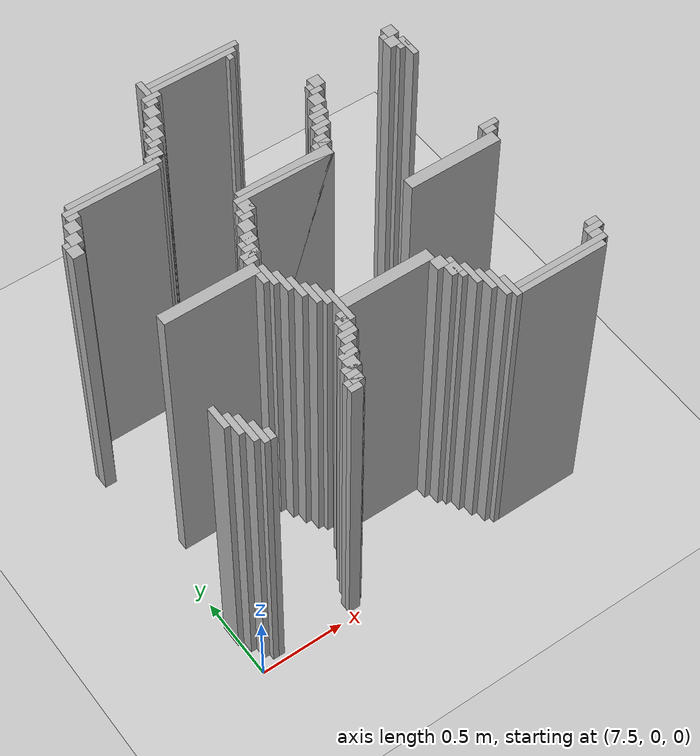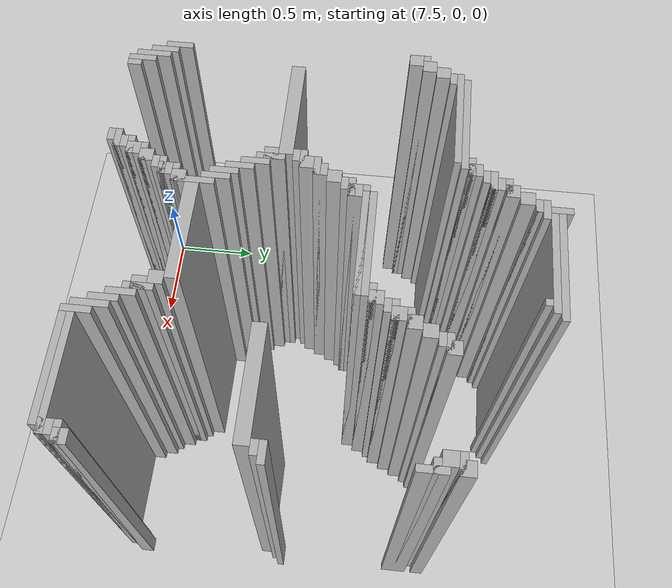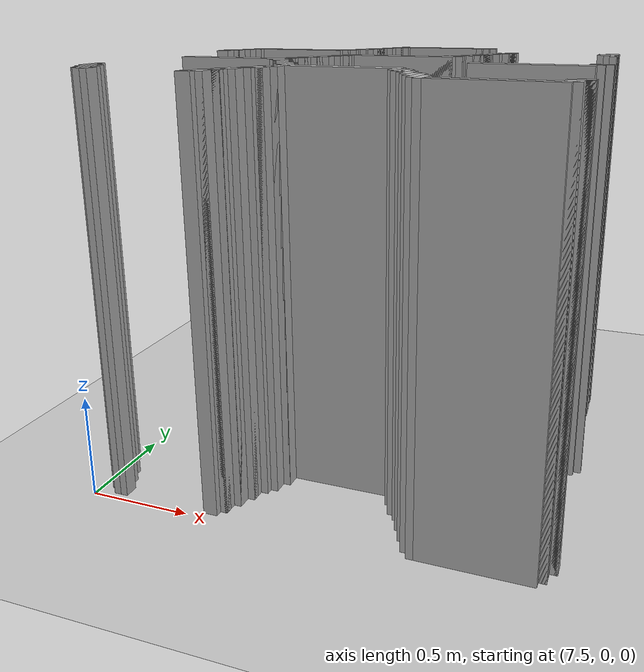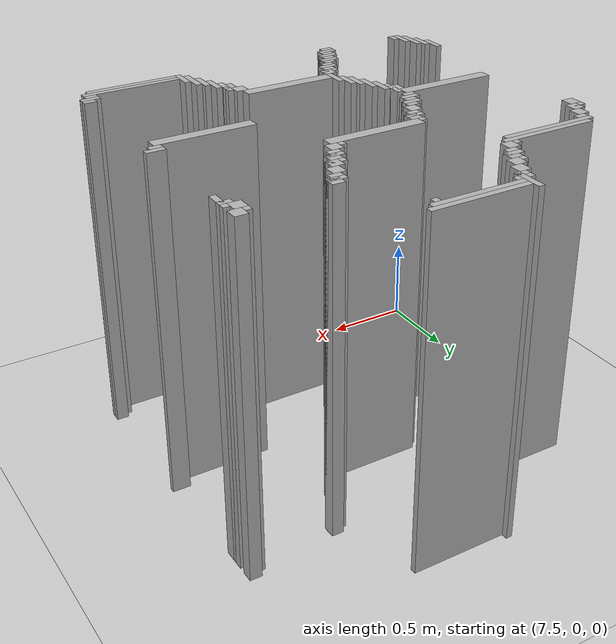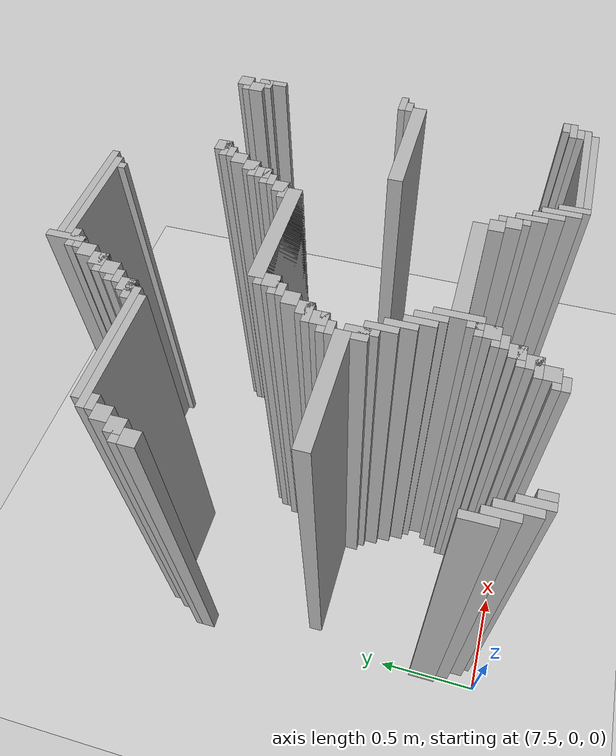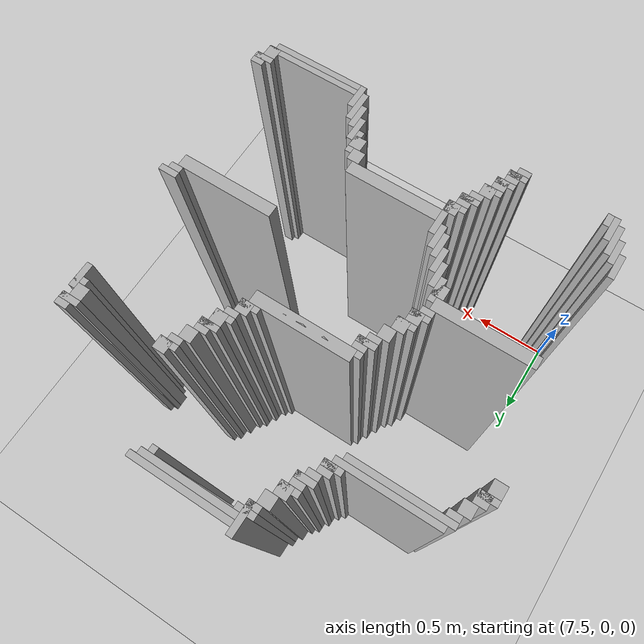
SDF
<sdf version="1.6">
 <world name="slam_world">
  <model name="ground_plane">
   <static>true</static>
   <link name="link">
    <collision name="collision">
     <geometry><plane><normal>0 0 1</normal><size>100 100</size></plane></geometry>
    </collision>
    <visual name="visual">
     <geometry><plane><normal>0 0 1</normal><size>100 100</size></plane></geometry>
     <material>
      <ambient>0.8 0.8 0.8 1</ambient>
      <diffuse>0.8 0.8 0.8 1</diffuse>
      <specular>0.8 0.8 0.8 1</specular>
     </material>
    </visual>
   </link>
  </model>
  <model name="wall_5125">
   <static>true</static>
   <pose>8.335266821345707 2.1751740139211138 1.0 0 0 0</pose>
   <link name="link">
    <collision name="collision">
     <geometry><box><size>0.03480278422273782 0.17401392111368907 2.0</size></box></geometry>
    </collision>
    <visual name="visual">
     <geometry><box><size>0.03480278422273782 0.17401392111368907 2.0</size></box></geometry>
     <material><ambient>0.5 0.5 0.5 1</ambient><diffuse>0.7 0.7 0.7 1</diffuse></material>
    </visual>
   </link>
  </model>
  <model name="wall_5140">
   <static>true</static>
   <pose>8.631090487238978 2.2099767981438516 1.0 0 0 0</pose>
   <link name="link">
    <collision name="collision">
     <geometry><box><size>0.5568445475638051 0.03480278422273782 2.0</size></box></geometry>
    </collision>
    <visual name="visual">
     <geometry><box><size>0.5568445475638051 0.03480278422273782 2.0</size></box></geometry>
     <material><ambient>0.5 0.5 0.5 1</ambient><diffuse>0.7 0.7 0.7 1</diffuse></material>
    </visual>
   </link>
  </model>
  <model name="wall_5154">
   <static>true</static>
   <pose>8.61368909512761 2.1751740139211138 1.0 0 0 0</pose>
   <link name="link">
    <collision name="collision">
     <geometry><box><size>0.5220417633410672 0.03480278422273782 2.0</size></box></geometry>
    </collision>
    <visual name="visual">
     <geometry><box><size>0.5220417633410672 0.03480278422273782 2.0</size></box></geometry>
     <material><ambient>0.5 0.5 0.5 1</ambient><diffuse>0.7 0.7 0.7 1</diffuse></material>
    </visual>
   </link>
  </model>
  <model name="wall_5169">
   <static>true</static>
   <pose>8.335266821345707 2.140371229698376 1.0 0 0 0</pose>
   <link name="link">
    <collision name="collision">
     <geometry><box><size>0.10440835266821345 0.03480278422273782 2.0</size></box></geometry>
    </collision>
    <visual name="visual">
     <geometry><box><size>0.10440835266821345 0.03480278422273782 2.0</size></box></geometry>
     <material><ambient>0.5 0.5 0.5 1</ambient><diffuse>0.7 0.7 0.7 1</diffuse></material>
    </visual>
   </link>
  </model>
  <model name="wall_5170">
   <static>true</static>
   <pose>8.822505800464036 2.140371229698376 1.0 0 0 0</pose>
   <link name="link">
    <collision name="collision">
     <geometry><box><size>0.03480278422273782 0.03480278422273782 2.0</size></box></geometry>
    </collision>
    <visual name="visual">
     <geometry><box><size>0.03480278422273782 0.03480278422273782 2.0</size></box></geometry>
     <material><ambient>0.5 0.5 0.5 1</ambient><diffuse>0.7 0.7 0.7 1</diffuse></material>
    </visual>
   </link>
  </model>
  <model name="wall_5185">
   <static>true</static>
   <pose>8.317865429234338 2.105568445475638 1.0 0 0 0</pose>
   <link name="link">
    <collision name="collision">
     <geometry><box><size>0.06960556844547564 0.03480278422273782 2.0</size></box></geometry>
    </collision>
    <visual name="visual">
     <geometry><box><size>0.06960556844547564 0.03480278422273782 2.0</size></box></geometry>
     <material><ambient>0.5 0.5 0.5 1</ambient><diffuse>0.7 0.7 0.7 1</diffuse></material>
    </visual>
   </link>
  </model>
  <model name="wall_5200">
   <static>true</static>
   <pose>8.2830626450116 2.053364269141531 1.0 0 0 0</pose>
   <link name="link">
    <collision name="collision">
     <geometry><box><size>0.06960556844547564 0.06960556844547564 2.0</size></box></geometry>
    </collision>
    <visual name="visual">
     <geometry><box><size>0.06960556844547564 0.06960556844547564 2.0</size></box></geometry>
     <material><ambient>0.5 0.5 0.5 1</ambient><diffuse>0.7 0.7 0.7 1</diffuse></material>
    </visual>
   </link>
  </model>
  <model name="wall_5215">
   <static>true</static>
   <pose>8.248259860788863 1.9837587006960555 1.0 0 0 0</pose>
   <link name="link">
    <collision name="collision">
     <geometry><box><size>0.06960556844547564 0.06960556844547564 2.0</size></box></geometry>
    </collision>
    <visual name="visual">
     <geometry><box><size>0.06960556844547564 0.06960556844547564 2.0</size></box></geometry>
     <material><ambient>0.5 0.5 0.5 1</ambient><diffuse>0.7 0.7 0.7 1</diffuse></material>
    </visual>
   </link>
  </model>
  <model name="wall_5230">
   <static>true</static>
   <pose>8.230858468677495 1.9663573085846866 1.0 0 0 0</pose>
   <link name="link">
    <collision name="collision">
     <geometry><box><size>0.10440835266821345 0.03480278422273782 2.0</size></box></geometry>
    </collision>
    <visual name="visual">
     <geometry><box><size>0.10440835266821345 0.03480278422273782 2.0</size></box></geometry>
     <material><ambient>0.5 0.5 0.5 1</ambient><diffuse>0.7 0.7 0.7 1</diffuse></material>
    </visual>
   </link>
  </model>
  <model name="wall_5242">
   <static>true</static>
   <pose>8.213457076566124 1.91415313225058 1.0 0 0 0</pose>
   <link name="link">
    <collision name="collision">
     <geometry><box><size>0.06960556844547564 0.06960556844547564 2.0</size></box></geometry>
    </collision>
    <visual name="visual">
     <geometry><box><size>0.06960556844547564 0.06960556844547564 2.0</size></box></geometry>
     <material><ambient>0.5 0.5 0.5 1</ambient><diffuse>0.7 0.7 0.7 1</diffuse></material>
    </visual>
   </link>
  </model>
  <model name="wall_5255">
   <static>true</static>
   <pose>8.196055684454755 1.896751740139211 1.0 0 0 0</pose>
   <link name="link">
    <collision name="collision">
     <geometry><box><size>0.10440835266821345 0.03480278422273782 2.0</size></box></geometry>
    </collision>
    <visual name="visual">
     <geometry><box><size>0.10440835266821345 0.03480278422273782 2.0</size></box></geometry>
     <material><ambient>0.5 0.5 0.5 1</ambient><diffuse>0.7 0.7 0.7 1</diffuse></material>
    </visual>
   </link>
  </model>
  <model name="wall_5267">
   <static>true</static>
   <pose>8.178654292343387 1.8619489559164732 1.0 0 0 0</pose>
   <link name="link">
    <collision name="collision">
     <geometry><box><size>0.06960556844547564 0.03480278422273782 2.0</size></box></geometry>
    </collision>
    <visual name="visual">
     <geometry><box><size>0.06960556844547564 0.03480278422273782 2.0</size></box></geometry>
     <material><ambient>0.5 0.5 0.5 1</ambient><diffuse>0.7 0.7 0.7 1</diffuse></material>
    </visual>
   </link>
  </model>
  <model name="wall_5279">
   <static>true</static>
   <pose>8.14385150812065 1.8097447795823665 1.0 0 0 0</pose>
   <link name="link">
    <collision name="collision">
     <geometry><box><size>0.06960556844547564 0.06960556844547564 2.0</size></box></geometry>
    </collision>
    <visual name="visual">
     <geometry><box><size>0.06960556844547564 0.06960556844547564 2.0</size></box></geometry>
     <material><ambient>0.5 0.5 0.5 1</ambient><diffuse>0.7 0.7 0.7 1</diffuse></material>
    </visual>
   </link>
  </model>
  <model name="wall_5280">
   <static>true</static>
   <pose>9.605568445475638 1.8097447795823665 1.0 0 0 0</pose>
   <link name="link">
    <collision name="collision">
     <geometry><box><size>0.06960556844547564 0.06960556844547564 2.0</size></box></geometry>
    </collision>
    <visual name="visual">
     <geometry><box><size>0.06960556844547564 0.06960556844547564 2.0</size></box></geometry>
     <material><ambient>0.5 0.5 0.5 1</ambient><diffuse>0.7 0.7 0.7 1</diffuse></material>
    </visual>
   </link>
  </model>
  <model name="wall_5294">
   <static>true</static>
   <pose>8.12645011600928 1.7923433874709975 1.0 0 0 0</pose>
   <link name="link">
    <collision name="collision">
     <geometry><box><size>0.10440835266821345 0.03480278422273782 2.0</size></box></geometry>
    </collision>
    <visual name="visual">
     <geometry><box><size>0.10440835266821345 0.03480278422273782 2.0</size></box></geometry>
     <material><ambient>0.5 0.5 0.5 1</ambient><diffuse>0.7 0.7 0.7 1</diffuse></material>
    </visual>
   </link>
  </model>
  <model name="wall_5295">
   <static>true</static>
   <pose>9.588167053364268 1.7923433874709975 1.0 0 0 0</pose>
   <link name="link">
    <collision name="collision">
     <geometry><box><size>0.10440835266821345 0.03480278422273782 2.0</size></box></geometry>
    </collision>
    <visual name="visual">
     <geometry><box><size>0.10440835266821345 0.03480278422273782 2.0</size></box></geometry>
     <material><ambient>0.5 0.5 0.5 1</ambient><diffuse>0.7 0.7 0.7 1</diffuse></material>
    </visual>
   </link>
  </model>
  <model name="wall_5308">
   <static>true</static>
   <pose>7.865429234338746 1.75754060324826 1.0 0 0 0</pose>
   <link name="link">
    <collision name="collision">
     <geometry><box><size>0.5568445475638051 0.03480278422273782 2.0</size></box></geometry>
    </collision>
    <visual name="visual">
     <geometry><box><size>0.5568445475638051 0.03480278422273782 2.0</size></box></geometry>
     <material><ambient>0.5 0.5 0.5 1</ambient><diffuse>0.7 0.7 0.7 1</diffuse></material>
    </visual>
   </link>
  </model>
  <model name="wall_5309">
   <static>true</static>
   <pose>9.08352668213457 1.740139211136891 1.0 0 0 0</pose>
   <link name="link">
    <collision name="collision">
     <geometry><box><size>0.06960556844547564 0.06960556844547564 2.0</size></box></geometry>
    </collision>
    <visual name="visual">
     <geometry><box><size>0.06960556844547564 0.06960556844547564 2.0</size></box></geometry>
     <material><ambient>0.5 0.5 0.5 1</ambient><diffuse>0.7 0.7 0.7 1</diffuse></material>
    </visual>
   </link>
  </model>
  <model name="wall_5310">
   <static>true</static>
   <pose>9.5707656612529 1.740139211136891 1.0 0 0 0</pose>
   <link name="link">
    <collision name="collision">
     <geometry><box><size>0.06960556844547564 0.06960556844547564 2.0</size></box></geometry>
    </collision>
    <visual name="visual">
     <geometry><box><size>0.06960556844547564 0.06960556844547564 2.0</size></box></geometry>
     <material><ambient>0.5 0.5 0.5 1</ambient><diffuse>0.7 0.7 0.7 1</diffuse></material>
    </visual>
   </link>
  </model>
  <model name="wall_5320">
   <static>true</static>
   <pose>7.830626450116009 1.722737819025522 1.0 0 0 0</pose>
   <link name="link">
    <collision name="collision">
     <geometry><box><size>0.5568445475638051 0.03480278422273782 2.0</size></box></geometry>
    </collision>
    <visual name="visual">
     <geometry><box><size>0.5568445475638051 0.03480278422273782 2.0</size></box></geometry>
     <material><ambient>0.5 0.5 0.5 1</ambient><diffuse>0.7 0.7 0.7 1</diffuse></material>
    </visual>
   </link>
  </model>
  <model name="wall_5321">
   <static>true</static>
   <pose>9.066125290023201 1.722737819025522 1.0 0 0 0</pose>
   <link name="link">
    <collision name="collision">
     <geometry><box><size>0.10440835266821345 0.03480278422273782 2.0</size></box></geometry>
    </collision>
    <visual name="visual">
     <geometry><box><size>0.10440835266821345 0.03480278422273782 2.0</size></box></geometry>
     <material><ambient>0.5 0.5 0.5 1</ambient><diffuse>0.7 0.7 0.7 1</diffuse></material>
    </visual>
   </link>
  </model>
  <model name="wall_5322">
   <static>true</static>
   <pose>9.622969837587007 1.6705336426914152 1.0 0 0 0</pose>
   <link name="link">
    <collision name="collision">
     <geometry><box><size>0.03480278422273782 0.13921113689095127 2.0</size></box></geometry>
    </collision>
    <visual name="visual">
     <geometry><box><size>0.03480278422273782 0.13921113689095127 2.0</size></box></geometry>
     <material><ambient>0.5 0.5 0.5 1</ambient><diffuse>0.7 0.7 0.7 1</diffuse></material>
    </visual>
   </link>
  </model>
  <model name="wall_5332">
   <static>true</static>
   <pose>7.587006960556844 1.6879350348027842 1.0 0 0 0</pose>
   <link name="link">
    <collision name="collision">
     <geometry><box><size>0.06960556844547564 0.03480278422273782 2.0</size></box></geometry>
    </collision>
    <visual name="visual">
     <geometry><box><size>0.06960556844547564 0.03480278422273782 2.0</size></box></geometry>
     <material><ambient>0.5 0.5 0.5 1</ambient><diffuse>0.7 0.7 0.7 1</diffuse></material>
    </visual>
   </link>
  </model>
  <model name="wall_5333">
   <static>true</static>
   <pose>9.048723897911833 1.6879350348027842 1.0 0 0 0</pose>
   <link name="link">
    <collision name="collision">
     <geometry><box><size>0.06960556844547564 0.03480278422273782 2.0</size></box></geometry>
    </collision>
    <visual name="visual">
     <geometry><box><size>0.06960556844547564 0.03480278422273782 2.0</size></box></geometry>
     <material><ambient>0.5 0.5 0.5 1</ambient><diffuse>0.7 0.7 0.7 1</diffuse></material>
    </visual>
   </link>
  </model>
  <model name="wall_5334">
   <static>true</static>
   <pose>9.605568445475638 1.6879350348027842 1.0 0 0 0</pose>
   <link name="link">
    <collision name="collision">
     <geometry><box><size>0.06960556844547564 0.03480278422273782 2.0</size></box></geometry>
    </collision>
    <visual name="visual">
     <geometry><box><size>0.06960556844547564 0.03480278422273782 2.0</size></box></geometry>
     <material><ambient>0.5 0.5 0.5 1</ambient><diffuse>0.7 0.7 0.7 1</diffuse></material>
    </visual>
   </link>
  </model>
  <model name="wall_5345">
   <static>true</static>
   <pose>7.552204176334106 1.6357308584686774 1.0 0 0 0</pose>
   <link name="link">
    <collision name="collision">
     <geometry><box><size>0.06960556844547564 0.06960556844547564 2.0</size></box></geometry>
    </collision>
    <visual name="visual">
     <geometry><box><size>0.06960556844547564 0.06960556844547564 2.0</size></box></geometry>
     <material><ambient>0.5 0.5 0.5 1</ambient><diffuse>0.7 0.7 0.7 1</diffuse></material>
    </visual>
   </link>
  </model>
  <model name="wall_5346">
   <static>true</static>
   <pose>9.013921113689095 1.6357308584686774 1.0 0 0 0</pose>
   <link name="link">
    <collision name="collision">
     <geometry><box><size>0.06960556844547564 0.06960556844547564 2.0</size></box></geometry>
    </collision>
    <visual name="visual">
     <geometry><box><size>0.06960556844547564 0.06960556844547564 2.0</size></box></geometry>
     <material><ambient>0.5 0.5 0.5 1</ambient><diffuse>0.7 0.7 0.7 1</diffuse></material>
    </visual>
   </link>
  </model>
  <model name="wall_5358">
   <static>true</static>
   <pose>7.517401392111369 1.5661252900232019 1.0 0 0 0</pose>
   <link name="link">
    <collision name="collision">
     <geometry><box><size>0.06960556844547564 0.06960556844547564 2.0</size></box></geometry>
    </collision>
    <visual name="visual">
     <geometry><box><size>0.06960556844547564 0.06960556844547564 2.0</size></box></geometry>
     <material><ambient>0.5 0.5 0.5 1</ambient><diffuse>0.7 0.7 0.7 1</diffuse></material>
    </visual>
   </link>
  </model>
  <model name="wall_5359">
   <static>true</static>
   <pose>8.979118329466356 1.5661252900232019 1.0 0 0 0</pose>
   <link name="link">
    <collision name="collision">
     <geometry><box><size>0.06960556844547564 0.06960556844547564 2.0</size></box></geometry>
    </collision>
    <visual name="visual">
     <geometry><box><size>0.06960556844547564 0.06960556844547564 2.0</size></box></geometry>
     <material><ambient>0.5 0.5 0.5 1</ambient><diffuse>0.7 0.7 0.7 1</diffuse></material>
    </visual>
   </link>
  </model>
  <model name="wall_5371">
   <static>true</static>
   <pose>7.5 1.548723897911833 1.0 0 0 0</pose>
   <link name="link">
    <collision name="collision">
     <geometry><box><size>0.10440835266821345 0.03480278422273782 2.0</size></box></geometry>
    </collision>
    <visual name="visual">
     <geometry><box><size>0.10440835266821345 0.03480278422273782 2.0</size></box></geometry>
     <material><ambient>0.5 0.5 0.5 1</ambient><diffuse>0.7 0.7 0.7 1</diffuse></material>
    </visual>
   </link>
  </model>
  <model name="wall_5372">
   <static>true</static>
   <pose>8.961716937354987 1.548723897911833 1.0 0 0 0</pose>
   <link name="link">
    <collision name="collision">
     <geometry><box><size>0.10440835266821345 0.03480278422273782 2.0</size></box></geometry>
    </collision>
    <visual name="visual">
     <geometry><box><size>0.10440835266821345 0.03480278422273782 2.0</size></box></geometry>
     <material><ambient>0.5 0.5 0.5 1</ambient><diffuse>0.7 0.7 0.7 1</diffuse></material>
    </visual>
   </link>
  </model>
  <model name="wall_5382">
   <static>true</static>
   <pose>7.48259860788863 1.4965197215777262 1.0 0 0 0</pose>
   <link name="link">
    <collision name="collision">
     <geometry><box><size>0.06960556844547564 0.06960556844547564 2.0</size></box></geometry>
    </collision>
    <visual name="visual">
     <geometry><box><size>0.06960556844547564 0.06960556844547564 2.0</size></box></geometry>
     <material><ambient>0.5 0.5 0.5 1</ambient><diffuse>0.7 0.7 0.7 1</diffuse></material>
    </visual>
   </link>
  </model>
  <model name="wall_5383">
   <static>true</static>
   <pose>8.944315545243619 1.4965197215777262 1.0 0 0 0</pose>
   <link name="link">
    <collision name="collision">
     <geometry><box><size>0.06960556844547564 0.06960556844547564 2.0</size></box></geometry>
    </collision>
    <visual name="visual">
     <geometry><box><size>0.06960556844547564 0.06960556844547564 2.0</size></box></geometry>
     <material><ambient>0.5 0.5 0.5 1</ambient><diffuse>0.7 0.7 0.7 1</diffuse></material>
    </visual>
   </link>
  </model>
  <model name="wall_5394">
   <static>true</static>
   <pose>8.92691415313225 1.4791183294663572 1.0 0 0 0</pose>
   <link name="link">
    <collision name="collision">
     <geometry><box><size>0.10440835266821345 0.03480278422273782 2.0</size></box></geometry>
    </collision>
    <visual name="visual">
     <geometry><box><size>0.10440835266821345 0.03480278422273782 2.0</size></box></geometry>
     <material><ambient>0.5 0.5 0.5 1</ambient><diffuse>0.7 0.7 0.7 1</diffuse></material>
    </visual>
   </link>
  </model>
  <model name="wall_5405">
   <static>true</static>
   <pose>8.909512761020881 1.4443155452436194 1.0 0 0 0</pose>
   <link name="link">
    <collision name="collision">
     <geometry><box><size>0.06960556844547564 0.03480278422273782 2.0</size></box></geometry>
    </collision>
    <visual name="visual">
     <geometry><box><size>0.06960556844547564 0.03480278422273782 2.0</size></box></geometry>
     <material><ambient>0.5 0.5 0.5 1</ambient><diffuse>0.7 0.7 0.7 1</diffuse></material>
    </visual>
   </link>
  </model>
  <model name="wall_5414">
   <static>true</static>
   <pose>8.874709976798144 1.3921113689095126 1.0 0 0 0</pose>
   <link name="link">
    <collision name="collision">
     <geometry><box><size>0.06960556844547564 0.06960556844547564 2.0</size></box></geometry>
    </collision>
    <visual name="visual">
     <geometry><box><size>0.06960556844547564 0.06960556844547564 2.0</size></box></geometry>
     <material><ambient>0.5 0.5 0.5 1</ambient><diffuse>0.7 0.7 0.7 1</diffuse></material>
    </visual>
   </link>
  </model>
  <model name="wall_5425">
   <static>true</static>
   <pose>8.857308584686775 1.3747099767981439 1.0 0 0 0</pose>
   <link name="link">
    <collision name="collision">
     <geometry><box><size>0.10440835266821345 0.03480278422273782 2.0</size></box></geometry>
    </collision>
    <visual name="visual">
     <geometry><box><size>0.10440835266821345 0.03480278422273782 2.0</size></box></geometry>
     <material><ambient>0.5 0.5 0.5 1</ambient><diffuse>0.7 0.7 0.7 1</diffuse></material>
    </visual>
   </link>
  </model>
  <model name="wall_5437">
   <static>true</static>
   <pose>8.596287703016241 1.322505800464037 1.0 0 0 0</pose>
   <link name="link">
    <collision name="collision">
     <geometry><box><size>0.5568445475638051 0.06960556844547564 2.0</size></box></geometry>
    </collision>
    <visual name="visual">
     <geometry><box><size>0.5568445475638051 0.06960556844547564 2.0</size></box></geometry>
     <material><ambient>0.5 0.5 0.5 1</ambient><diffuse>0.7 0.7 0.7 1</diffuse></material>
    </visual>
   </link>
  </model>
  <model name="wall_5449">
   <static>true</static>
   <pose>8.578886310904872 1.3051044083526682 1.0 0 0 0</pose>
   <link name="link">
    <collision name="collision">
     <geometry><box><size>0.5916473317865429 0.03480278422273782 2.0</size></box></geometry>
    </collision>
    <visual name="visual">
     <geometry><box><size>0.5916473317865429 0.03480278422273782 2.0</size></box></geometry>
     <material><ambient>0.5 0.5 0.5 1</ambient><diffuse>0.7 0.7 0.7 1</diffuse></material>
    </visual>
   </link>
  </model>
  <model name="wall_5463">
   <static>true</static>
   <pose>8.317865429234338 1.2529002320185614 1.0 0 0 0</pose>
   <link name="link">
    <collision name="collision">
     <geometry><box><size>0.06960556844547564 0.06960556844547564 2.0</size></box></geometry>
    </collision>
    <visual name="visual">
     <geometry><box><size>0.06960556844547564 0.06960556844547564 2.0</size></box></geometry>
     <material><ambient>0.5 0.5 0.5 1</ambient><diffuse>0.7 0.7 0.7 1</diffuse></material>
    </visual>
   </link>
  </model>
  <model name="wall_5478">
   <static>true</static>
   <pose>8.30046403712297 1.2354988399071924 1.0 0 0 0</pose>
   <link name="link">
    <collision name="collision">
     <geometry><box><size>0.10440835266821345 0.03480278422273782 2.0</size></box></geometry>
    </collision>
    <visual name="visual">
     <geometry><box><size>0.10440835266821345 0.03480278422273782 2.0</size></box></geometry>
     <material><ambient>0.5 0.5 0.5 1</ambient><diffuse>0.7 0.7 0.7 1</diffuse></material>
    </visual>
   </link>
  </model>
  <model name="wall_5492">
   <static>true</static>
   <pose>8.2830626450116 1.2006960556844548 1.0 0 0 0</pose>
   <link name="link">
    <collision name="collision">
     <geometry><box><size>0.06960556844547564 0.03480278422273782 2.0</size></box></geometry>
    </collision>
    <visual name="visual">
     <geometry><box><size>0.06960556844547564 0.03480278422273782 2.0</size></box></geometry>
     <material><ambient>0.5 0.5 0.5 1</ambient><diffuse>0.7 0.7 0.7 1</diffuse></material>
    </visual>
   </link>
  </model>
  <model name="wall_5505">
   <static>true</static>
   <pose>8.248259860788863 1.148491879350348 1.0 0 0 0</pose>
   <link name="link">
    <collision name="collision">
     <geometry><box><size>0.06960556844547564 0.06960556844547564 2.0</size></box></geometry>
    </collision>
    <visual name="visual">
     <geometry><box><size>0.06960556844547564 0.06960556844547564 2.0</size></box></geometry>
     <material><ambient>0.5 0.5 0.5 1</ambient><diffuse>0.7 0.7 0.7 1</diffuse></material>
    </visual>
   </link>
  </model>
  <model name="wall_5520">
   <static>true</static>
   <pose>8.213457076566124 1.0788863109048723 1.0 0 0 0</pose>
   <link name="link">
    <collision name="collision">
     <geometry><box><size>0.06960556844547564 0.06960556844547564 2.0</size></box></geometry>
    </collision>
    <visual name="visual">
     <geometry><box><size>0.06960556844547564 0.06960556844547564 2.0</size></box></geometry>
     <material><ambient>0.5 0.5 0.5 1</ambient><diffuse>0.7 0.7 0.7 1</diffuse></material>
    </visual>
   </link>
  </model>
  <model name="wall_5535">
   <static>true</static>
   <pose>8.196055684454755 1.0614849187935034 1.0 0 0 0</pose>
   <link name="link">
    <collision name="collision">
     <geometry><box><size>0.10440835266821345 0.03480278422273782 2.0</size></box></geometry>
    </collision>
    <visual name="visual">
     <geometry><box><size>0.10440835266821345 0.03480278422273782 2.0</size></box></geometry>
     <material><ambient>0.5 0.5 0.5 1</ambient><diffuse>0.7 0.7 0.7 1</diffuse></material>
    </visual>
   </link>
  </model>
  <model name="wall_5547">
   <static>true</static>
   <pose>8.178654292343387 1.0092807424593968 1.0 0 0 0</pose>
   <link name="link">
    <collision name="collision">
     <geometry><box><size>0.06960556844547564 0.06960556844547564 2.0</size></box></geometry>
    </collision>
    <visual name="visual">
     <geometry><box><size>0.06960556844547564 0.06960556844547564 2.0</size></box></geometry>
     <material><ambient>0.5 0.5 0.5 1</ambient><diffuse>0.7 0.7 0.7 1</diffuse></material>
    </visual>
   </link>
  </model>
  <model name="wall_5559">
   <static>true</static>
   <pose>8.161252900232018 0.9918793503480278 1.0 0 0 0</pose>
   <link name="link">
    <collision name="collision">
     <geometry><box><size>0.10440835266821345 0.03480278422273782 2.0</size></box></geometry>
    </collision>
    <visual name="visual">
     <geometry><box><size>0.10440835266821345 0.03480278422273782 2.0</size></box></geometry>
     <material><ambient>0.5 0.5 0.5 1</ambient><diffuse>0.7 0.7 0.7 1</diffuse></material>
    </visual>
   </link>
  </model>
  <model name="wall_5560">
   <static>true</static>
   <pose>9.622969837587007 0.9918793503480278 1.0 0 0 0</pose>
   <link name="link">
    <collision name="collision">
     <geometry><box><size>0.10440835266821345 0.03480278422273782 2.0</size></box></geometry>
    </collision>
    <visual name="visual">
     <geometry><box><size>0.10440835266821345 0.03480278422273782 2.0</size></box></geometry>
     <material><ambient>0.5 0.5 0.5 1</ambient><diffuse>0.7 0.7 0.7 1</diffuse></material>
    </visual>
   </link>
  </model>
  <model name="wall_5571">
   <static>true</static>
   <pose>8.14385150812065 0.95707656612529 1.0 0 0 0</pose>
   <link name="link">
    <collision name="collision">
     <geometry><box><size>0.06960556844547564 0.03480278422273782 2.0</size></box></geometry>
    </collision>
    <visual name="visual">
     <geometry><box><size>0.06960556844547564 0.03480278422273782 2.0</size></box></geometry>
     <material><ambient>0.5 0.5 0.5 1</ambient><diffuse>0.7 0.7 0.7 1</diffuse></material>
    </visual>
   </link>
  </model>
  <model name="wall_5572">
   <static>true</static>
   <pose>9.605568445475638 0.95707656612529 1.0 0 0 0</pose>
   <link name="link">
    <collision name="collision">
     <geometry><box><size>0.06960556844547564 0.03480278422273782 2.0</size></box></geometry>
    </collision>
    <visual name="visual">
     <geometry><box><size>0.06960556844547564 0.03480278422273782 2.0</size></box></geometry>
     <material><ambient>0.5 0.5 0.5 1</ambient><diffuse>0.7 0.7 0.7 1</diffuse></material>
    </visual>
   </link>
  </model>
  <model name="wall_5581">
   <static>true</static>
   <pose>7.865429234338746 0.9048723897911832 1.0 0 0 0</pose>
   <link name="link">
    <collision name="collision">
     <geometry><box><size>0.5568445475638051 0.06960556844547564 2.0</size></box></geometry>
    </collision>
    <visual name="visual">
     <geometry><box><size>0.5568445475638051 0.06960556844547564 2.0</size></box></geometry>
     <material><ambient>0.5 0.5 0.5 1</ambient><diffuse>0.7 0.7 0.7 1</diffuse></material>
    </visual>
   </link>
  </model>
  <model name="wall_5582">
   <static>true</static>
   <pose>9.327146171693736 0.9048723897911832 1.0 0 0 0</pose>
   <link name="link">
    <collision name="collision">
     <geometry><box><size>0.5568445475638051 0.06960556844547564 2.0</size></box></geometry>
    </collision>
    <visual name="visual">
     <geometry><box><size>0.5568445475638051 0.06960556844547564 2.0</size></box></geometry>
     <material><ambient>0.5 0.5 0.5 1</ambient><diffuse>0.7 0.7 0.7 1</diffuse></material>
    </visual>
   </link>
  </model>
  <model name="wall_5591">
   <static>true</static>
   <pose>8.161252900232018 0.8352668213457076 1.0 0 0 0</pose>
   <link name="link">
    <collision name="collision">
     <geometry><box><size>0.03480278422273782 0.13921113689095127 2.0</size></box></geometry>
    </collision>
    <visual name="visual">
     <geometry><box><size>0.03480278422273782 0.13921113689095127 2.0</size></box></geometry>
     <material><ambient>0.5 0.5 0.5 1</ambient><diffuse>0.7 0.7 0.7 1</diffuse></material>
    </visual>
   </link>
  </model>
  <model name="wall_5598">
   <static>true</static>
   <pose>8.14385150812065 0.8352668213457076 1.0 0 0 0</pose>
   <link name="link">
    <collision name="collision">
     <geometry><box><size>0.06960556844547564 0.06960556844547564 2.0</size></box></geometry>
    </collision>
    <visual name="visual">
     <geometry><box><size>0.06960556844547564 0.06960556844547564 2.0</size></box></geometry>
     <material><ambient>0.5 0.5 0.5 1</ambient><diffuse>0.7 0.7 0.7 1</diffuse></material>
    </visual>
   </link>
  </model>
  <model name="wall_5605">
   <static>true</static>
   <pose>8.196055684454755 0.765661252900232 1.0 0 0 0</pose>
   <link name="link">
    <collision name="collision">
     <geometry><box><size>0.03480278422273782 0.13921113689095127 2.0</size></box></geometry>
    </collision>
    <visual name="visual">
     <geometry><box><size>0.03480278422273782 0.13921113689095127 2.0</size></box></geometry>
     <material><ambient>0.5 0.5 0.5 1</ambient><diffuse>0.7 0.7 0.7 1</diffuse></material>
    </visual>
   </link>
  </model>
  <model name="wall_5616">
   <static>true</static>
   <pose>8.230858468677495 0.6960556844547563 1.0 0 0 0</pose>
   <link name="link">
    <collision name="collision">
     <geometry><box><size>0.03480278422273782 0.13921113689095127 2.0</size></box></geometry>
    </collision>
    <visual name="visual">
     <geometry><box><size>0.03480278422273782 0.13921113689095127 2.0</size></box></geometry>
     <material><ambient>0.5 0.5 0.5 1</ambient><diffuse>0.7 0.7 0.7 1</diffuse></material>
    </visual>
   </link>
  </model>
  <model name="wall_5623">
   <static>true</static>
   <pose>8.265661252900232 0.6264501160092807 1.0 0 0 0</pose>
   <link name="link">
    <collision name="collision">
     <geometry><box><size>0.03480278422273782 0.13921113689095127 2.0</size></box></geometry>
    </collision>
    <visual name="visual">
     <geometry><box><size>0.03480278422273782 0.13921113689095127 2.0</size></box></geometry>
     <material><ambient>0.5 0.5 0.5 1</ambient><diffuse>0.7 0.7 0.7 1</diffuse></material>
    </visual>
   </link>
  </model>
  <model name="wall_5630">
   <static>true</static>
   <pose>8.30046403712297 0.5916473317865429 1.0 0 0 0</pose>
   <link name="link">
    <collision name="collision">
     <geometry><box><size>0.03480278422273782 0.13921113689095127 2.0</size></box></geometry>
    </collision>
    <visual name="visual">
     <geometry><box><size>0.03480278422273782 0.13921113689095127 2.0</size></box></geometry>
     <material><ambient>0.5 0.5 0.5 1</ambient><diffuse>0.7 0.7 0.7 1</diffuse></material>
    </visual>
   </link>
  </model>
  <model name="wall_5641">
   <static>true</static>
   <pose>8.335266821345707 0.4872389791183295 1.0 0 0 0</pose>
   <link name="link">
    <collision name="collision">
     <geometry><box><size>0.03480278422273782 0.2088167053364269 2.0</size></box></geometry>
    </collision>
    <visual name="visual">
     <geometry><box><size>0.03480278422273782 0.2088167053364269 2.0</size></box></geometry>
     <material><ambient>0.5 0.5 0.5 1</ambient><diffuse>0.7 0.7 0.7 1</diffuse></material>
    </visual>
   </link>
  </model>
  <model name="wall_5655">
   <static>true</static>
   <pose>8.61368909512761 0.4872389791183295 1.0 0 0 0</pose>
   <link name="link">
    <collision name="collision">
     <geometry><box><size>0.5220417633410672 0.06960556844547564 2.0</size></box></geometry>
    </collision>
    <visual name="visual">
     <geometry><box><size>0.5220417633410672 0.06960556844547564 2.0</size></box></geometry>
     <material><ambient>0.5 0.5 0.5 1</ambient><diffuse>0.7 0.7 0.7 1</diffuse></material>
    </visual>
   </link>
  </model>
  <model name="wall_5671">
   <static>true</static>
   <pose>8.317865429234338 0.4176334106728538 1.0 0 0 0</pose>
   <link name="link">
    <collision name="collision">
     <geometry><box><size>0.06960556844547564 0.06960556844547564 2.0</size></box></geometry>
    </collision>
    <visual name="visual">
     <geometry><box><size>0.06960556844547564 0.06960556844547564 2.0</size></box></geometry>
     <material><ambient>0.5 0.5 0.5 1</ambient><diffuse>0.7 0.7 0.7 1</diffuse></material>
    </visual>
   </link>
  </model>
  <model name="wall_5672">
   <static>true</static>
   <pose>8.874709976798144 0.4176334106728538 1.0 0 0 0</pose>
   <link name="link">
    <collision name="collision">
     <geometry><box><size>0.06960556844547564 0.06960556844547564 2.0</size></box></geometry>
    </collision>
    <visual name="visual">
     <geometry><box><size>0.06960556844547564 0.06960556844547564 2.0</size></box></geometry>
     <material><ambient>0.5 0.5 0.5 1</ambient><diffuse>0.7 0.7 0.7 1</diffuse></material>
    </visual>
   </link>
  </model>
  <model name="wall_5691">
   <static>true</static>
   <pose>8.30046403712297 0.4002320185614849 1.0 0 0 0</pose>
   <link name="link">
    <collision name="collision">
     <geometry><box><size>0.10440835266821345 0.03480278422273782 2.0</size></box></geometry>
    </collision>
    <visual name="visual">
     <geometry><box><size>0.10440835266821345 0.03480278422273782 2.0</size></box></geometry>
     <material><ambient>0.5 0.5 0.5 1</ambient><diffuse>0.7 0.7 0.7 1</diffuse></material>
    </visual>
   </link>
  </model>
  <model name="wall_5692">
   <static>true</static>
   <pose>8.92691415313225 0.34802784222737815 1.0 0 0 0</pose>
   <link name="link">
    <collision name="collision">
     <geometry><box><size>0.03480278422273782 0.13921113689095127 2.0</size></box></geometry>
    </collision>
    <visual name="visual">
     <geometry><box><size>0.03480278422273782 0.13921113689095127 2.0</size></box></geometry>
     <material><ambient>0.5 0.5 0.5 1</ambient><diffuse>0.7 0.7 0.7 1</diffuse></material>
    </visual>
   </link>
  </model>
  <model name="wall_5711">
   <static>true</static>
   <pose>8.2830626450116 0.34802784222737815 1.0 0 0 0</pose>
   <link name="link">
    <collision name="collision">
     <geometry><box><size>0.06960556844547564 0.06960556844547564 2.0</size></box></geometry>
    </collision>
    <visual name="visual">
     <geometry><box><size>0.06960556844547564 0.06960556844547564 2.0</size></box></geometry>
     <material><ambient>0.5 0.5 0.5 1</ambient><diffuse>0.7 0.7 0.7 1</diffuse></material>
    </visual>
   </link>
  </model>
  <model name="wall_5712">
   <static>true</static>
   <pose>8.909512761020881 0.34802784222737815 1.0 0 0 0</pose>
   <link name="link">
    <collision name="collision">
     <geometry><box><size>0.06960556844547564 0.06960556844547564 2.0</size></box></geometry>
    </collision>
    <visual name="visual">
     <geometry><box><size>0.06960556844547564 0.06960556844547564 2.0</size></box></geometry>
     <material><ambient>0.5 0.5 0.5 1</ambient><diffuse>0.7 0.7 0.7 1</diffuse></material>
    </visual>
   </link>
  </model>
  <model name="wall_5730">
   <static>true</static>
   <pose>7.5 0.27842227378190254 1.0 0 0 0</pose>
   <link name="link">
    <collision name="collision">
     <geometry><box><size>0.03480278422273782 0.13921113689095127 2.0</size></box></geometry>
    </collision>
    <visual name="visual">
     <geometry><box><size>0.03480278422273782 0.13921113689095127 2.0</size></box></geometry>
     <material><ambient>0.5 0.5 0.5 1</ambient><diffuse>0.7 0.7 0.7 1</diffuse></material>
    </visual>
   </link>
  </model>
  <model name="wall_5731">
   <static>true</static>
   <pose>8.265661252900232 0.3306264501160093 1.0 0 0 0</pose>
   <link name="link">
    <collision name="collision">
     <geometry><box><size>0.10440835266821345 0.03480278422273782 2.0</size></box></geometry>
    </collision>
    <visual name="visual">
     <geometry><box><size>0.10440835266821345 0.03480278422273782 2.0</size></box></geometry>
     <material><ambient>0.5 0.5 0.5 1</ambient><diffuse>0.7 0.7 0.7 1</diffuse></material>
    </visual>
   </link>
  </model>
  <model name="wall_5732">
   <static>true</static>
   <pose>8.961716937354987 0.27842227378190254 1.0 0 0 0</pose>
   <link name="link">
    <collision name="collision">
     <geometry><box><size>0.03480278422273782 0.13921113689095127 2.0</size></box></geometry>
    </collision>
    <visual name="visual">
     <geometry><box><size>0.03480278422273782 0.13921113689095127 2.0</size></box></geometry>
     <material><ambient>0.5 0.5 0.5 1</ambient><diffuse>0.7 0.7 0.7 1</diffuse></material>
    </visual>
   </link>
  </model>
  <model name="wall_5745">
   <static>true</static>
   <pose>8.248259860788863 0.29582366589327147 1.0 0 0 0</pose>
   <link name="link">
    <collision name="collision">
     <geometry><box><size>0.06960556844547564 0.03480278422273782 2.0</size></box></geometry>
    </collision>
    <visual name="visual">
     <geometry><box><size>0.06960556844547564 0.03480278422273782 2.0</size></box></geometry>
     <material><ambient>0.5 0.5 0.5 1</ambient><diffuse>0.7 0.7 0.7 1</diffuse></material>
    </visual>
   </link>
  </model>
  <model name="wall_5760">
   <static>true</static>
   <pose>7.534802784222737 0.2088167053364269 1.0 0 0 0</pose>
   <link name="link">
    <collision name="collision">
     <geometry><box><size>0.03480278422273782 0.13921113689095127 2.0</size></box></geometry>
    </collision>
    <visual name="visual">
     <geometry><box><size>0.03480278422273782 0.13921113689095127 2.0</size></box></geometry>
     <material><ambient>0.5 0.5 0.5 1</ambient><diffuse>0.7 0.7 0.7 1</diffuse></material>
    </visual>
   </link>
  </model>
  <model name="wall_5761">
   <static>true</static>
   <pose>8.213457076566124 0.24361948955916474 1.0 0 0 0</pose>
   <link name="link">
    <collision name="collision">
     <geometry><box><size>0.06960556844547564 0.06960556844547564 2.0</size></box></geometry>
    </collision>
    <visual name="visual">
     <geometry><box><size>0.06960556844547564 0.06960556844547564 2.0</size></box></geometry>
     <material><ambient>0.5 0.5 0.5 1</ambient><diffuse>0.7 0.7 0.7 1</diffuse></material>
    </visual>
   </link>
  </model>
  <model name="wall_5762">
   <static>true</static>
   <pose>8.996519721577727 0.2088167053364269 1.0 0 0 0</pose>
   <link name="link">
    <collision name="collision">
     <geometry><box><size>0.03480278422273782 0.13921113689095127 2.0</size></box></geometry>
    </collision>
    <visual name="visual">
     <geometry><box><size>0.03480278422273782 0.13921113689095127 2.0</size></box></geometry>
     <material><ambient>0.5 0.5 0.5 1</ambient><diffuse>0.7 0.7 0.7 1</diffuse></material>
    </visual>
   </link>
  </model>
  <model name="wall_5780">
   <static>true</static>
   <pose>7.569605568445476 0.15661252900232017 1.0 0 0 0</pose>
   <link name="link">
    <collision name="collision">
     <geometry><box><size>0.03480278422273782 0.17401392111368907 2.0</size></box></geometry>
    </collision>
    <visual name="visual">
     <geometry><box><size>0.03480278422273782 0.17401392111368907 2.0</size></box></geometry>
     <material><ambient>0.5 0.5 0.5 1</ambient><diffuse>0.7 0.7 0.7 1</diffuse></material>
    </visual>
   </link>
  </model>
  <model name="wall_5781">
   <static>true</static>
   <pose>8.196055684454755 0.2262180974477958 1.0 0 0 0</pose>
   <link name="link">
    <collision name="collision">
     <geometry><box><size>0.10440835266821345 0.03480278422273782 2.0</size></box></geometry>
    </collision>
    <visual name="visual">
     <geometry><box><size>0.10440835266821345 0.03480278422273782 2.0</size></box></geometry>
     <material><ambient>0.5 0.5 0.5 1</ambient><diffuse>0.7 0.7 0.7 1</diffuse></material>
    </visual>
   </link>
  </model>
  <model name="wall_5782">
   <static>true</static>
   <pose>9.031322505800464 0.15661252900232017 1.0 0 0 0</pose>
   <link name="link">
    <collision name="collision">
     <geometry><box><size>0.03480278422273782 0.17401392111368907 2.0</size></box></geometry>
    </collision>
    <visual name="visual">
     <geometry><box><size>0.03480278422273782 0.17401392111368907 2.0</size></box></geometry>
     <material><ambient>0.5 0.5 0.5 1</ambient><diffuse>0.7 0.7 0.7 1</diffuse></material>
    </visual>
   </link>
  </model>
  <model name="wall_5795">
   <static>true</static>
   <pose>8.178654292343387 0.17401392111368907 1.0 0 0 0</pose>
   <link name="link">
    <collision name="collision">
     <geometry><box><size>0.06960556844547564 0.06960556844547564 2.0</size></box></geometry>
    </collision>
    <visual name="visual">
     <geometry><box><size>0.06960556844547564 0.06960556844547564 2.0</size></box></geometry>
     <material><ambient>0.5 0.5 0.5 1</ambient><diffuse>0.7 0.7 0.7 1</diffuse></material>
    </visual>
   </link>
  </model>
  <model name="wall_5796">
   <static>true</static>
   <pose>9.640371229698376 0.17401392111368907 1.0 0 0 0</pose>
   <link name="link">
    <collision name="collision">
     <geometry><box><size>0.06960556844547564 0.06960556844547564 2.0</size></box></geometry>
    </collision>
    <visual name="visual">
     <geometry><box><size>0.06960556844547564 0.06960556844547564 2.0</size></box></geometry>
     <material><ambient>0.5 0.5 0.5 1</ambient><diffuse>0.7 0.7 0.7 1</diffuse></material>
    </visual>
   </link>
  </model>
  <model name="wall_5810">
   <static>true</static>
   <pose>7.604408352668213 0.10440835266821345 1.0 0 0 0</pose>
   <link name="link">
    <collision name="collision">
     <geometry><box><size>0.03480278422273782 0.13921113689095127 2.0</size></box></geometry>
    </collision>
    <visual name="visual">
     <geometry><box><size>0.03480278422273782 0.13921113689095127 2.0</size></box></geometry>
     <material><ambient>0.5 0.5 0.5 1</ambient><diffuse>0.7 0.7 0.7 1</diffuse></material>
    </visual>
   </link>
  </model>
  <model name="wall_5811">
   <static>true</static>
   <pose>8.161252900232018 0.15661252900232017 1.0 0 0 0</pose>
   <link name="link">
    <collision name="collision">
     <geometry><box><size>0.10440835266821345 0.03480278422273782 2.0</size></box></geometry>
    </collision>
    <visual name="visual">
     <geometry><box><size>0.10440835266821345 0.03480278422273782 2.0</size></box></geometry>
     <material><ambient>0.5 0.5 0.5 1</ambient><diffuse>0.7 0.7 0.7 1</diffuse></material>
    </visual>
   </link>
  </model>
  <model name="wall_5812">
   <static>true</static>
   <pose>9.066125290023201 0.10440835266821345 1.0 0 0 0</pose>
   <link name="link">
    <collision name="collision">
     <geometry><box><size>0.03480278422273782 0.13921113689095127 2.0</size></box></geometry>
    </collision>
    <visual name="visual">
     <geometry><box><size>0.03480278422273782 0.13921113689095127 2.0</size></box></geometry>
     <material><ambient>0.5 0.5 0.5 1</ambient><diffuse>0.7 0.7 0.7 1</diffuse></material>
    </visual>
   </link>
  </model>
  <model name="wall_5813">
   <static>true</static>
   <pose>9.622969837587007 0.15661252900232017 1.0 0 0 0</pose>
   <link name="link">
    <collision name="collision">
     <geometry><box><size>0.10440835266821345 0.03480278422273782 2.0</size></box></geometry>
    </collision>
    <visual name="visual">
     <geometry><box><size>0.10440835266821345 0.03480278422273782 2.0</size></box></geometry>
     <material><ambient>0.5 0.5 0.5 1</ambient><diffuse>0.7 0.7 0.7 1</diffuse></material>
    </visual>
   </link>
  </model>
  <model name="wall_5825">
   <static>true</static>
   <pose>8.14385150812065 0.10440835266821345 1.0 0 0 0</pose>
   <link name="link">
    <collision name="collision">
     <geometry><box><size>0.06960556844547564 0.06960556844547564 2.0</size></box></geometry>
    </collision>
    <visual name="visual">
     <geometry><box><size>0.06960556844547564 0.06960556844547564 2.0</size></box></geometry>
     <material><ambient>0.5 0.5 0.5 1</ambient><diffuse>0.7 0.7 0.7 1</diffuse></material>
    </visual>
   </link>
  </model>
  <model name="wall_5826">
   <static>true</static>
   <pose>9.605568445475638 0.10440835266821345 1.0 0 0 0</pose>
   <link name="link">
    <collision name="collision">
     <geometry><box><size>0.06960556844547564 0.06960556844547564 2.0</size></box></geometry>
    </collision>
    <visual name="visual">
     <geometry><box><size>0.06960556844547564 0.06960556844547564 2.0</size></box></geometry>
     <material><ambient>0.5 0.5 0.5 1</ambient><diffuse>0.7 0.7 0.7 1</diffuse></material>
    </visual>
   </link>
  </model>
  <model name="wall_5835">
   <static>true</static>
   <pose>7.6392111368909505 0.06960556844547564 1.0 0 0 0</pose>
   <link name="link">
    <collision name="collision">
     <geometry><box><size>0.03480278422273782 0.06960556844547564 2.0</size></box></geometry>
    </collision>
    <visual name="visual">
     <geometry><box><size>0.03480278422273782 0.06960556844547564 2.0</size></box></geometry>
     <material><ambient>0.5 0.5 0.5 1</ambient><diffuse>0.7 0.7 0.7 1</diffuse></material>
    </visual>
   </link>
  </model>
  <model name="wall_5836">
   <static>true</static>
   <pose>8.12645011600928 0.08700696055684454 1.0 0 0 0</pose>
   <link name="link">
    <collision name="collision">
     <geometry><box><size>0.10440835266821345 0.03480278422273782 2.0</size></box></geometry>
    </collision>
    <visual name="visual">
     <geometry><box><size>0.10440835266821345 0.03480278422273782 2.0</size></box></geometry>
     <material><ambient>0.5 0.5 0.5 1</ambient><diffuse>0.7 0.7 0.7 1</diffuse></material>
    </visual>
   </link>
  </model>
  <model name="wall_5837">
   <static>true</static>
   <pose>9.361948955916473 0.08700696055684454 1.0 0 0 0</pose>
   <link name="link">
    <collision name="collision">
     <geometry><box><size>0.5568445475638051 0.03480278422273782 2.0</size></box></geometry>
    </collision>
    <visual name="visual">
     <geometry><box><size>0.5568445475638051 0.03480278422273782 2.0</size></box></geometry>
     <material><ambient>0.5 0.5 0.5 1</ambient><diffuse>0.7 0.7 0.7 1</diffuse></material>
    </visual>
   </link>
  </model>
  <model name="wall_5846">
   <static>true</static>
   <pose>8.109048723897912 0.052204176334106726 1.0 0 0 0</pose>
   <link name="link">
    <collision name="collision">
     <geometry><box><size>0.06960556844547564 0.03480278422273782 2.0</size></box></geometry>
    </collision>
    <visual name="visual">
     <geometry><box><size>0.06960556844547564 0.03480278422273782 2.0</size></box></geometry>
     <material><ambient>0.5 0.5 0.5 1</ambient><diffuse>0.7 0.7 0.7 1</diffuse></material>
    </visual>
   </link>
  </model>
  <model name="wall_5847">
   <static>true</static>
   <pose>9.344547563805104 0.052204176334106726 1.0 0 0 0</pose>
   <link name="link">
    <collision name="collision">
     <geometry><box><size>0.5220417633410672 0.03480278422273782 2.0</size></box></geometry>
    </collision>
    <visual name="visual">
     <geometry><box><size>0.5220417633410672 0.03480278422273782 2.0</size></box></geometry>
     <material><ambient>0.5 0.5 0.5 1</ambient><diffuse>0.7 0.7 0.7 1</diffuse></material>
    </visual>
   </link>
  </model>
 </world>
</sdf>
